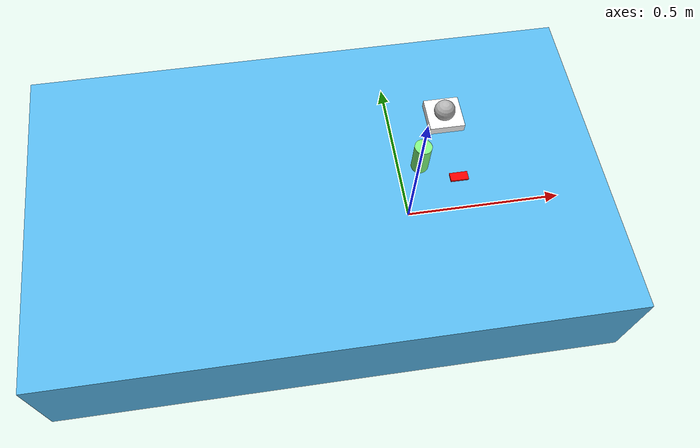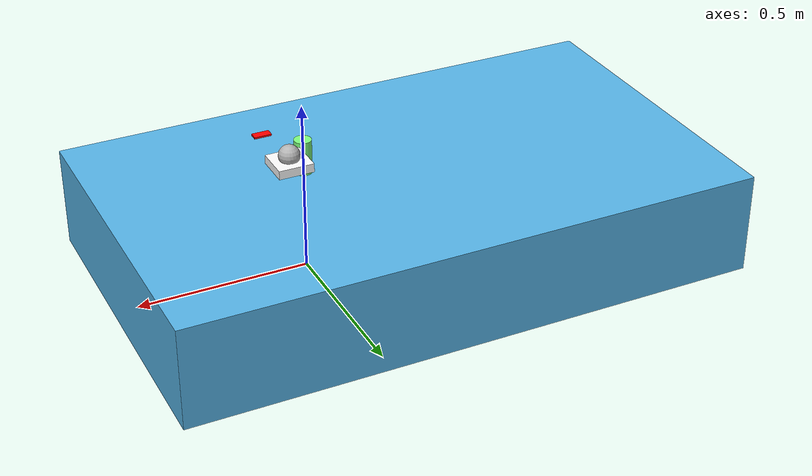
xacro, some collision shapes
<?xml version="1.0"?>
<!-- Otter 船模组合入口，展开艇体、推进器和按开关启用的传感器及物理插件。 -->

<!-- Defines the Otter USV with gazebo plugins for dynamics and thrust -->
<robot name="otter" xmlns:xacro="http://ros.org/wiki/xacro">

  <!-- Arguments -->
  <xacro:arg name="gps_enabled"           default="true" />
  <xacro:arg name="imu_enabled"           default="true" />
  <xacro:arg name="lidar_enabled"         default="true" />
  <xacro:arg name="thruster_namespace"    default="thrusters/"/>
  <xacro:arg name="sensor_namespace"      default="sensors/"/>
  <!-- The dedicated Station Keeping world owns its non-zero wind plugin. -->
  <xacro:arg name="wind_enabled"          default="true" />

  <!-- Define macros -->
  <xacro:arg name="namespace" default=""/>
  <xacro:property name="thruster_namespace" value="$(arg thruster_namespace)" scope="global" />
  <xacro:property name="sensor_namespace" value="$(arg sensor_namespace)" scope="global" />
  <xacro:property name="namespace" value="$(arg namespace)" scope="global" />

  <!-- Defines the "otter_base" macro -->
  <xacro:include filename="$(find sim_env)/urdf/otter/otter_base.urdf.xacro" />

  <!-- Defines the "usv_dynamics_gazebo" macro -->
  <xacro:include filename="$(find sim_env)/urdf/otter/dynamics/otter_gazebo_dynamics_plugin.xacro" />

  <!-- Defines the "usv_wind_gazebo" macro -->
  <xacro:include filename="$(find sim_env)/urdf/otter/dynamics/otter_gazebo_wind_plugin.xacro" />

  <!-- Defines the "usv_thrust_gazebo" macro -->
  <xacro:include filename="$(find sim_env)/urdf/otter/thrusters/otter_gazebo_thruster_plugin.xacro" />

  <!-- Define macros for sensors -->
  <xacro:include filename="$(find sim_env)/urdf/otter/sensors/otter_gps.xacro" />
  <xacro:include filename="$(find sim_env)/urdf/otter/sensors/otter_imu.xacro" />
  <xacro:include filename="$(find sim_env)/urdf/otter/sensors/otter_lidar.xacro" />

  <!-- Call the macros defined above -->

  <!-- Includes basic description of the Otter without plugins -->
  <xacro:otter_base />

  <!-- USV dynamics plugin -->
  <xacro:usv_dynamics_gazebo name="otter"/>

  <!-- Attach the legacy model wind plugin unless the world owns it. -->
  <xacro:if value="$(arg wind_enabled)">
    <xacro:usv_wind_gazebo name="otter"/>
  </xacro:if>

  <!-- USV thrust plugin -->
  <xacro:otter_usv_thrust_gazebo name="otter"/>

  <!-- Add simulated GPS -->
  <xacro:if value="$(arg gps_enabled)">
    <xacro:otter_gps name="gps" x="0.08" y="0.1" z="0.395" />
  </xacro:if>

  <!-- Add Simulated IMU -->
  <xacro:if value="$(arg imu_enabled)">
    <xacro:otter_imu name="imu" x="0.08" y="-0.1" z="0.385" />
  </xacro:if>

  <!-- Add planar LIDAR -->
  <xacro:if value="$(arg lidar_enabled)">
    <xacro:otter_lidar name="lidar" x="0" y="0.0" z="0.40" min_range="1.2" max_range="25" visualize="false" />
  </xacro:if>

</robot>

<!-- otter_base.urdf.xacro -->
<!-- 船体基础连杆、质量惯量与外观/碰撞模型；这些决定 Gazebo 刚体结构。 -->

<robot name="otter" xmlns:xacro="http://ros.org/wiki/xacro">

  <!-- 定义可复用宏；调用时替换参数并展开为实际 URDF/SDF 元素。 -->
  <xacro:macro name="otter_base">

    <!-- Included URDF/XACRO Files -->
    <xacro:include filename="$(find sim_env)/urdf/otter/materials.urdf.xacro" />
    <xacro:include filename="$(find sim_env)/urdf/otter/parts.mininertia.urdf.xacro" />
    <xacro:include filename="$(find sim_env)/urdf/otter/propeller.xacro" />

    <!-- PROPERTY LIST -->
    <!--All units in m-kg-s-radians unit system -->
    <xacro:property name="M_PI" value="3.1415926535897931" />
    <xacro:property name="HH"   value="0.10" />

    <!-- base_footprint is a fictitious link(frame) that is on the ground right below base_link origin, navigation stack depends on this frame -->
    <link name="base_footprint">
      <!-- 质量和惯性张量影响动力学；与仅用于显示的网格外观分别配置。 -->
      <inertial>
        <mass value="0.00001" />
        <origin xyz="0 0 ${HH}" />
        <inertia ixx="0.000001" ixy="0.0" ixz="0.0" iyy="0.000001" iyz="0.0" izz="0.000001" />
      </inertial>
      <!-- 外观几何与材质只负责显示，不能据此认定物理碰撞尺寸。 -->
      <visual>
        <origin xyz="0 0 0" rpy="0 0 0" />
        <geometry>
          <box size="0.001 0.001 0.001" />
        </geometry>
      </visual>
    </link>
    <gazebo reference="base_footprint">
        <turnGravityOff>false</turnGravityOff>
    </gazebo>

    <!--Actual body/chassis of the robot-->
    <link name="base_link">
      <inertial>
        <mass value="29" />
        <origin xyz="0 0 0.29" /> <!-- Center of mass -->
        <inertia ixx="10" ixy="0" ixz="0" iyy="10" iyz="0" izz="10" />
      </inertial>
      <visual>
        <origin xyz="0 0 0.6" rpy="0 0 -${M_PI/2}" />
        <geometry>
          <mesh filename="package://sim_env/meshes/otter/otter.dae"/>
        </geometry>
      </visual>
      <!-- 碰撞几何参与物理接触检测，不一定与显示网格完全相同。 -->
      <collision>
        <origin xyz="-0.3 0 ${HH}" rpy="-${M_PI/2} 0 ${M_PI/2}" />
        <geometry>
          <box size="1.0 0.3 1.7"/>
        </geometry>
      </collision>
    </link>
    <joint name="base_footprint_joint" type="fixed">
      <origin xyz="0 0 0" rpy="0 0 0" />
      <parent link="base_link"/>
      <child link="base_footprint" />
    </joint>
    <gazebo reference="base_link">
      <turnGravityOff>false</turnGravityOff>
    </gazebo>

    <!-- Left propeller -->
    <xacro:propeller prefix="left" position="-0.89 0.395 -0.07" />
    <gazebo reference="left_propeller_link">
      <material>Gazebo/Orange</material>
    </gazebo>

    <!-- Right propeller -->
    <xacro:propeller prefix="right" position="-0.88 -0.395 -0.07" />
    <gazebo reference="right_propeller_link">
      <material>Gazebo/Orange</material>
    </gazebo>

  </xacro:macro>

</robot>

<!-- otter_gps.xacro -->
<!-- GPS 传感器模板，描述安装位姿和仿真输出；普通导航入口当前关闭该传感器。 -->
<robot xmlns:xacro="http://ros.org/wiki/xacro">
  <!-- 定义可复用宏；调用时替换参数并展开为实际 URDF/SDF 元素。 -->
  <xacro:macro name="otter_gps" params="name:=gps x:=0 y:=0 z:=0 R:=0 P:=0 Y:=0">
    <link name="${name}_link">
      <!-- 外观几何与材质只负责显示，不能据此认定物理碰撞尺寸。 -->
      <visual name="${name}_visual_base">
        <geometry>
          <box size="0.1 0.1 0.025" />
        </geometry>
        <material name="${name}_visual_base_material">
          <color rgba="1.0 1.0 1.0 1.0" />
        </material>
      </visual>
      <visual name="${name}_visual_antenna">
        <origin xyz="0 0 0.025" />
        <geometry>
          <sphere radius="0.03" />
        </geometry>
        <material name="${name}_visual_antenna_material">
          <color rgba="0.7 0.7 0.7 1.0" />
        </material>
      </visual>
    </link>
    <joint name="${name}_joint" type="fixed">
      <origin xyz="${x} ${y} ${z}" rpy="${R} ${P} ${Y}" />
      <parent link="base_link" />
      <child link="${name}_link" />
    </joint>
    <gazebo reference="${name}_link">
      <!-- ROS 2 gazebo_ros_pkgs GPS sensor (navsat) -->
      <!-- 加载指定动态库并传入参数；具体数值处理由对应插件源码完成。 -->
      <plugin name="gps_plugin_${name}" filename="libgazebo_ros_gps_sensor.so">
        <ros>
          <namespace>/${namespace}</namespace>
          <remapping>~/out:=${sensor_namespace}gps/gps/fix</remapping>
        </ros>
        <update_rate>15.0</update_rate>
        <gaussian_noise>0.0</gaussian_noise>
        <frame_name>${namespace}/${name}_link</frame_name>
      </plugin>
    </gazebo>
  </xacro:macro>
</robot>

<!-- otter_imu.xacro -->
<!-- IMU 传感器模板，描述安装位姿和输出配置；普通导航入口当前关闭该传感器。 -->
<robot xmlns:xacro="http://ros.org/wiki/xacro">
  <!-- 定义可复用宏；调用时替换参数并展开为实际 URDF/SDF 元素。 -->
  <xacro:macro name="otter_imu" params="name:=imu x:=0 y:=0 z:=0 R:=0 P:=0 Y:=0">
    <link name="${name}_link">
      <!-- 外观几何与材质只负责显示，不能据此认定物理碰撞尺寸。 -->
      <visual name="${name}_visual">>
        <geometry>
          <box size="0.05 0.025 0.005" />
        </geometry>
        <material name="${name}_visual_material">
          <color rgba="1.0 0.0 00 1.0" />
        </material>
      </visual>
    </link>
    <joint name="${name}_joint" type="fixed">
      <origin xyz="${x} ${y} ${z}" rpy="${R} ${P} ${Y}"/>
      <parent link="base_link"/>
      <child link="${name}_link"/>
    </joint>
    <gazebo reference="${name}_link">
      <!-- ROS 2 gazebo_ros_pkgs IMU sensor -->
      <!-- 加载指定动态库并传入参数；具体数值处理由对应插件源码完成。 -->
      <plugin name="imu_plugin_${name}" filename="libgazebo_ros_imu_sensor.so">
        <ros>
          <namespace>/${namespace}</namespace>
          <remapping>~/out:=${sensor_namespace}imu/imu/data</remapping>
        </ros>
        <update_rate>15.0</update_rate>
        <imu_name>${name}</imu_name>
        <frame_name>${namespace}/${name}_link</frame_name>
        <initial_orientation_as_reference>false</initial_orientation_as_reference>
        <gaussian_noise>0.0</gaussian_noise>
        <accelerometer>
          <noise>
            <type>gaussian</type>
            <mean>0.0</mean>
            <stddev>0.0</stddev>
            <bias_mean>0.0</bias_mean>
            <bias_stddev>0.0</bias_stddev>
          </noise>
        </accelerometer>
        <gyroscope>
          <noise>
            <type>gaussian</type>
            <mean>0.0</mean>
            <stddev>0.0</stddev>
            <bias_mean>0.0</bias_mean>
            <bias_stddev>0.0</bias_stddev>
          </noise>
        </gyroscope>
      </plugin>
    </gazebo>
  </xacro:macro>
</robot>

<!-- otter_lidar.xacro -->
<!-- LiDAR 传感器模板，配置扫描几何、量程和发布接口，作为当前障碍感知输入。 -->
<robot xmlns:xacro="http://ros.org/wiki/xacro">
  <!-- 定义可复用宏；调用时替换参数并展开为实际 URDF/SDF 元素。 -->
  <xacro:macro name="otter_lidar" params="name x:=0.5 y:=0 z:=0 R:=0 P:=0 Y:=0 min_range:=0.2 max_range:=25 visualize:=false">
    <link name="${name}_link">
      <!-- 外观几何与材质只负责显示，不能据此认定物理碰撞尺寸。 -->
      <visual name="${name}_visual">
        <origin xyz="0 0 -0.05"/>
        <geometry>
          <cylinder radius="0.025" length="0.1" />
        </geometry>
        <material name="${name}_visual_material">
          <color rgba="0.5 1.0 0.5 1.0" />
        </material>
      </visual>
    </link>
    <joint name="${name}_joint" type="fixed">
      <origin xyz="${x} ${y} ${z}" rpy="${R} ${P} ${Y}" />
      <parent link="base_link" />
      <child link="${name}_link" />
    </joint>
    <gazebo reference="${name}_link">
      <!-- 传感器更新率、测量范围与插件输出在此配置。 -->
      <sensor type="ray" name="lidar_${name}">
        <!-- 笔记本/WSL 上 2000 线×15 Hz 会打满 gzserver，扫描来不及投影到 costmap。 -->
        <update_rate>8</update_rate>
	      <visualize>${visualize}</visualize>
        <ray>
          <scan>
            <horizontal>
              <samples>720</samples>
              <resolution>1</resolution>
              <min_angle>-3.14159265359</min_angle>
              <max_angle>3.14159265359</max_angle>
            </horizontal>
          </scan>
          <range>
            <!-- Minimum distance of the beam -->
            <min>${min_range}</min>
            <!-- Maximum distance of the beam -->
            <max>${max_range}</max>
            <!-- Linear resolution of the beam -->
            <resolution>0.03</resolution> <!--changed from 0.02 to 0.03-->
          </range>
        </ray>
        <!-- ROS 2 gazebo_ros_pkgs ray sensor (laser scan output) -->
        <!-- 加载指定动态库并传入参数；具体数值处理由对应插件源码完成。 -->
        <plugin name="lidar" filename="libgazebo_ros_ray_sensor.so">
          <ros>
            <!-- remap to the topic used by the mapping and costmap nodes -->
            <namespace>/${namespace}</namespace>
            <remapping>~/out:=${sensor_namespace}lidars/${name}/scan</remapping>
          </ros>
          <output_type>sensor_msgs/LaserScan</output_type>
          <frame_name>${namespace}/${name}_link</frame_name>
        </plugin>
      </sensor>
    </gazebo>
  </xacro:macro>
</robot>

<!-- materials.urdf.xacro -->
<!-- 船模使用的命名材质与颜色，供 visual 外观引用。 -->

<robot>
	<material name="Black">
		<color rgba="0.0 0.0 0.0 1.0"/>
	</material>

	<material name="Gray">
		<color rgba="0.7 0.7 0.7 1.0"/>
	</material>

	<material name="DarkGray">
		<color rgba="0.2 0.2 0.2 1.0"/>
	</material>

	<material name="White">
		<color rgba="1.0 1.0 1.0 1.0"/>
	</material>

	<material name="Yellow">
		<color rgba="1.0 0.8 0.0 1.0"/>
	</material>
</robot>

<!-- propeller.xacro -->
<!-- 推进器连杆与关节的 xacro 模板，描述安装位置及其机械连接。 -->

<robot name="otter_propeller" xmlns:xacro="http://ros.org/wiki/xacro">

  <!-- Macro for inserting a propeller. -->
  <!-- 定义可复用宏；调用时替换参数并展开为实际 URDF/SDF 元素。 -->
  <xacro:macro name="propeller" params="prefix position:='0 0 0' orientation:='0 0 0'">

    <link name="${prefix}_propeller_link">
      <!-- 碰撞几何参与物理接触检测，不一定与显示网格完全相同。 -->
      <collision name="${prefix}_propeller_collision">
        <origin xyz="-0.08 0 0" rpy="0 1.57 0" />
        <geometry>
          <cylinder length="0.18" radius="0.24" />
        </geometry>
      </collision>
      <!-- 质量和惯性张量影响动力学；与仅用于显示的网格外观分别配置。 -->
      <inertial>
        <mass value="0.5"/>
        <inertia ixx="0.008545" ixy="0.0" ixz="0.0" iyy="0.008545" iyz="0.0" izz="0.0144"/>
      </inertial>
    </link>

    <joint name="${prefix}_engine_propeller_joint" type="continuous">
      <axis rpy="0 0 0" xyz="1 0 0"/>
      <parent link="base_link"/>
      <child link="${prefix}_propeller_link"/>
      <origin xyz="${position}" rpy="${orientation}"/>
      <limit effort="100" velocity="100" />
      <dynamics friction="0.05" damping="0.05" />
    </joint>
  </xacro:macro>
</robot>
